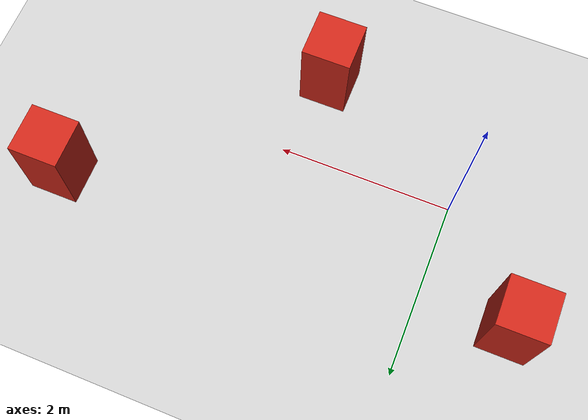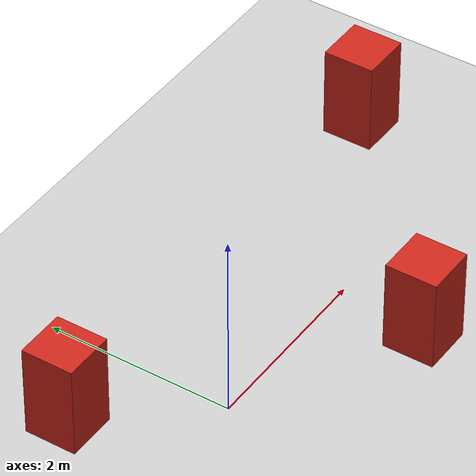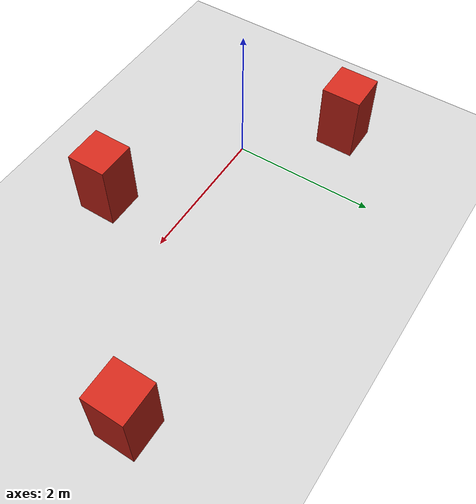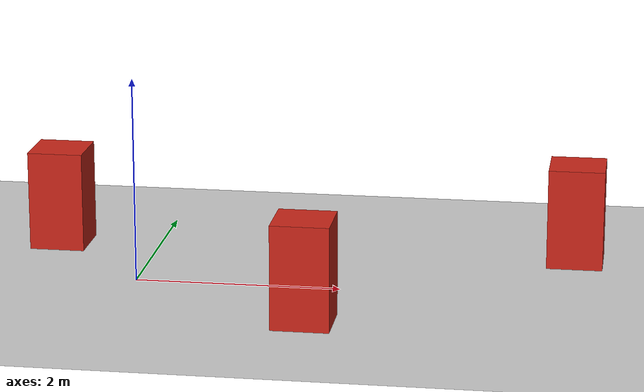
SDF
<?xml version="1.0"?>
<sdf version="1.6"><world name="static_sparse"><physics name="default_physics" type="ode"><max_step_size>0.001</max_step_size><real_time_update_rate>1000</real_time_update_rate></physics><plugin name="gazebo_ros_state" filename="libgazebo_ros_state.so"><update_rate>50</update_rate></plugin><include><uri>model://ground_plane</uri></include><include><uri>model://sun</uri></include>
<include><name>obstacle_sparse_1</name><uri>model://r680_obstacle_box</uri><pose>-1.0 1.1 0.5 0 0 0</pose><static>true</static></include>
<include><name>obstacle_sparse_2</name><uri>model://r680_obstacle_box</uri><pose>1.8 -1.0 0.5 0 0 0</pose><static>true</static></include>
<include><name>obstacle_sparse_3</name><uri>model://r680_obstacle_box</uri><pose>4.2 1.2 0.5 0 0 0</pose><static>true</static></include></world></sdf>

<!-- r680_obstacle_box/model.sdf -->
<sdf version="1.6"><model name="r680_obstacle_box"><static>false</static><allow_auto_disable>false</allow_auto_disable><link name="body"><gravity>false</gravity><inertial><mass>20</mass><inertia><ixx>0.8</ixx><iyy>0.8</iyy><izz>0.8</izz></inertia></inertial><collision name="collision"><geometry><box><size>0.55 0.55 1.0</size></box></geometry></collision><visual name="visual"><geometry><box><size>0.55 0.55 1.0</size></box></geometry><material><ambient>0.8 0.15 0.1 1</ambient><diffuse>0.8 0.15 0.1 1</diffuse></material></visual></link></model></sdf>
